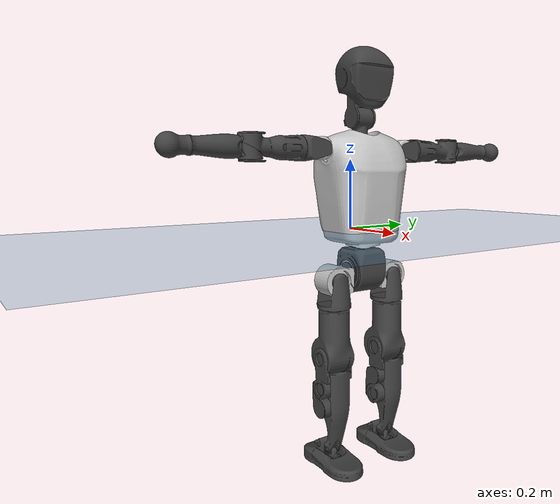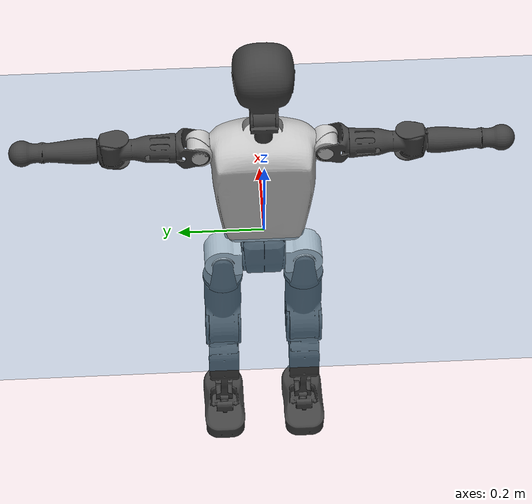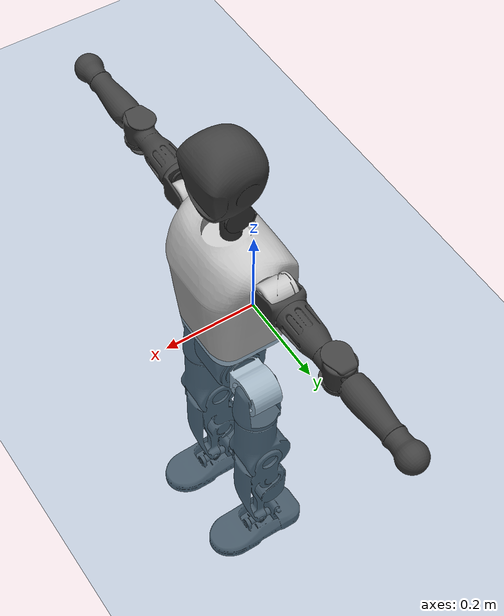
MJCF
<mujoco model="T1">
  <compiler angle="radian" assetdir="assets" balanceinertia="true" inertiafromgeom="false"/>

  <option timestep="0.005" density="1.2" viscosity="2e-05"/>

  <size nkey="1"/>

  <visual>
    <quality shadowsize="8192"/>
    <map shadowclip="0.5"/>
  </visual>

  <default>
    <default class="/">
      <joint armature="0.01" damping="0.01" frictionloss="0.1"/>
      <geom contype="0" conaffinity="0" group="1" solref="-1000 -80"/>
      <site size="0.01 0.005 0.005" group="5"/>
      <general forcelimited="true" biastype="affine" gainprm="25" biasprm="0 -25 -0.6"/>
      <default class="t1">
        <geom rgba="0.25 0.25 0.25 1"/>
        <default class="visual">
          <geom type="mesh" group="2"/>
        </default>
        <default class="collision">
          <geom group="3"/>
        </default>
        <default class="foot">
          <geom size="0.1115 0.05 0.015" type="box" condim="6" group="4" priority="1" solimp="0.015 1 0.015"/>
        </default>
        <default class="reward_collision_sphere">
          <geom group="5" rgba="1 0 0 1"/>
        </default>
      </default>
    </default>
  </default>

  <asset>
    <texture type="skybox" colorspace="auto" name="//unnamed_texture_0" builtin="gradient" rgb1="0.95 0.95 0.95" rgb2="0.95 0.95 0.95" width="100" height="600"/>
    <texture type="2d" colorspace="auto" name="texplane" builtin="checker" rgb1="0.345 0.575 0.748" rgb2="0.345 0.575 0.748" markrgb="1 1 1" width="512" height="512"/>
    <material name="MatPlane" class="/" texture="texplane" texuniform="true" texrepeat="2 2" specular="0.9"/>
    <mesh name="Trunk" class="/" file="Trunk.stl"/>
    <mesh name="H1" class="/" file="H1.stl"/>
    <mesh name="H2" class="/" file="H2.stl"/>
    <mesh name="AL1" class="/" file="AL1.stl"/>
    <mesh name="AL2" class="/" file="AL2.stl"/>
    <mesh name="AL3" class="/" file="AL3.stl"/>
    <mesh name="left_hand_link" class="/" file="left_hand_link.stl"/>
    <mesh name="AR1" class="/" file="AR1.stl"/>
    <mesh name="AR2" class="/" file="AR2.stl"/>
    <mesh name="AR3" class="/" file="AR3.stl"/>
    <mesh name="right_hand_link" class="/" file="right_hand_link.stl"/>
    <mesh name="Waist" class="/" file="Waist.stl"/>
    <mesh name="Hip_Pitch_Left" class="/" file="Hip_Pitch_Left.stl"/>
    <mesh name="Hip_Roll_Left" class="/" file="Hip_Roll_Left.stl"/>
    <mesh name="Hip_Yaw_Left" class="/" file="Hip_Yaw_Left.stl"/>
    <mesh name="Shank_Left" class="/" file="Shank_Left.stl"/>
    <mesh name="Ankle_Cross_Left" class="/" file="Ankle_Cross_Left.stl"/>
    <mesh name="left_foot_link" class="/" file="left_foot_link.stl"/>
    <mesh name="Hip_Pitch_Right" class="/" file="Hip_Pitch_Right.stl"/>
    <mesh name="Hip_Roll_Right" class="/" file="Hip_Roll_Right.stl"/>
    <mesh name="Hip_Yaw_Right" class="/" file="Hip_Yaw_Right.stl"/>
    <mesh name="Shank_Right" class="/" file="Shank_Right.stl"/>
    <mesh name="Ankle_Cross_Right" class="/" file="Ankle_Cross_Right.stl"/>
    <mesh name="right_foot_link" class="/" file="right_foot_link.stl"/>
  </asset>

  <worldbody>
    <geom name="floor" class="/" size="100 100 0.125" type="plane" group="0" material="MatPlane"/>
    <light name="toplight_shadow" class="/" pos="0 0 5" dir="0.0990148 0.0990148 -0.990148" type="directional" ambient="0.04 0.04 0.04" diffuse="0.55 0.55 0.55" specular="0.12 0.12 0.12"/>
    <light name="toplight_fill" class="/" pos="0 0 5" dir="0.0990148 0.0990148 -0.990148" type="directional" castshadow="false" ambient="0.04 0.04 0.04" diffuse="0.3 0.3 0.3" specular="0.08 0.08 0.08"/>
    <body name="trunk" childclass="t1" pos="-0.000659758 0.000123077 0.000190647" quat="1 -0.00013902 -4.61307e-05 -0.000158038">
      <inertial pos="0.0464229 -0.000673156 0.110018" quat="0.999965 0.00202874 -0.00802173 0.00114797" mass="9.48741" diaginertia="0.0409022 0.0481669 0.0677747"/>
      <joint name="//unnamed_joint_0" type="free" armature="0" damping="0" frictionloss="0"/>
      <geom name="//unnamed_geom_1" class="visual" rgba="0.76 0.76 0.76 1" mesh="Trunk"/>
      <geom name="//unnamed_geom_2" class="collision" size="0.0699758 0.0933011 0.139952" pos="0.0510356 0 0.124537" type="box"/>
      <geom name="//unnamed_geom_3" class="reward_collision_sphere" size="0.107296" pos="0.0510356 0 0.103781"/>
      <geom name="//unnamed_geom_4" class="reward_collision_sphere" size="0.0139952" pos="0.0510356 0.0774034 0"/>
      <geom name="//unnamed_geom_5" class="reward_collision_sphere" size="0.0139952" pos="0.0510356 -0.0774034 0"/>
      <geom name="//unnamed_geom_6" class="reward_collision_sphere" size="0.0139952" pos="0.0510356 0.0974372 0.186806"/>
      <geom name="//unnamed_geom_7" class="reward_collision_sphere" size="0.0139952" pos="0.0510356 -0.0974372 0.186806"/>
      <site name="imu" pos="-0.00487688 0.00433971 -0.00182553" size="0.00933011"/>
      <camera name="track" pos="0 -1.82126 0" quat="0.707107 0.707107 0 0" mode="trackcom"/>
      <camera name="ego_camera" pos="0.103772 0 0.435881" quat="-0.5 -0.5 0.5 0.5"/>
      <body name="H1" pos="0.0510076 -0.00144712 0.250431" quat="1 9.29764e-05 7.17653e-05 3.94656e-05">
        <inertial pos="-0.00055495 -0.00109888 0.0605558" quat="0.765667 -0.00961206 0.00438377 0.643151" mass="0.361592" diaginertia="0.000107456 0.000138127 0.000181203"/>
        <joint name="AAHead_yaw" pos="0 0 0" axis="0.00391655 0.00139393 0.999991" range="-1.56575 1.56084" armature="0.00955449" damping="0.0114645" frictionloss="0.0889847"/>
        <geom name="//unnamed_geom_8" class="visual" mesh="H1"/>
        <body name="H2" pos="-0.000350585 3.54191e-06 0.0638653" quat="1 -3.38035e-05 -8.56712e-06 9.32047e-06">
          <inertial pos="0.00577611 -0.000640881 0.102456" quat="0.988545 0.106696 -0.0734587 -0.0774537" mass="0.51414" diaginertia="0.000917492 0.00120704 0.00205619"/>
          <joint name="Head_pitch" pos="0 0 0" axis="-6.42849e-06 -1 1.2689e-05" range="-1.22294 0.347007" armature="0.00905566" damping="0.00574642" frictionloss="0.092614"/>
          <geom name="//unnamed_geom_9" class="visual" mesh="H2"/>
          <geom name="//unnamed_geom_10" class="collision" size="0.0746409" pos="0.00850593 0 0.114159"/>
          <geom name="//unnamed_geom_11" class="reward_collision_sphere" size="0.083971" pos="0.0170119 0 0.103781"/>
        </body>
      </body>
      <body name="AL1" pos="0.0487707 0.098759 0.226466" quat="1 -8.34808e-06 0.000451126 1.5661e-05">
        <inertial pos="-0.00195179 0.0416588 5.31763e-05" quat="0.504248 0.495766 -0.504206 0.495708" mass="0.42049" diaginertia="0.000595397 0.000791577 0.000349584"/>
        <joint name="Left_Shoulder_Pitch" pos="0 0 0" axis="0.00464734 0.999988 -0.00166059" range="-3.32686 1.21881" armature="0.00901661" damping="0.00846924" frictionloss="0.0958302"/>
        <geom name="//unnamed_geom_12" class="visual" rgba="0.76 0.76 0.76 1" mesh="AL1"/>
        <body name="AL2" pos="0.00113452 0.0442008 -0.000733081" quat="1 0.000119906 0.000140261 0.000333201">
          <inertial pos="0.00328908 0.0345022 -0.00125874" quat="0.487818 0.511859 -0.487974 0.511777" mass="0.131556" diaginertia="0.000180245 0.000222304 0.000217027"/>
          <joint name="Left_Shoulder_Roll" pos="0 0 0" axis="-0.999999 -0.000542842 0.000874476" range="-1.58511 1.73092" armature="0.0093466" damping="0.0124531" frictionloss="0.0913409"/>
          <geom name="//unnamed_geom_13" class="visual" mesh="AL2"/>
          <body name="AL3" pos="0.00190965 0.0556694 0.000974924" quat="1 -3.07357e-07 0.000275416 0.00019741">
            <inertial pos="-0.000569636 0.077914 -0.000330101" quat="0.706444 0.707769 -7.05515e-05 -7.16539e-05" mass="0.821742" diaginertia="0.00572831 0.00798838 0.000746511"/>
            <joint name="Left_Elbow_Pitch" pos="0 0 0" axis="0.00196925 -0.999996 0.00215447" stiffness="0.00178394" range="-2.27806 2.27221" armature="0.00921348" damping="0.0126898" frictionloss="0.094576"/>
            <geom name="//unnamed_geom_14" class="visual" mesh="AL3"/>
            <geom name="//unnamed_geom_15" class="collision" size="0.0279903 0.0699758" pos="0 0.0455314 0" quat="0.707105 0.707108 0 0" type="cylinder"/>
            <geom name="//unnamed_geom_16" class="reward_collision_sphere" size="0.0335884"/>
            <body name="left_hand_link" pos="-0.00061458 0.134266 0.00111451" quat="1 -1.44264e-05 6.15365e-05 -2.44035e-05">
              <inertial pos="0.0014139 0.0996558 -0.00011772" quat="0.7102 0.704 0.000245385 -0.000126816" mass="0.266429" diaginertia="0.00362489 0.00506905 0.000255078"/>
              <joint name="Left_Elbow_Yaw" pos="0 0 0" axis="0.00273608 -0.00577917 0.99998" range="-2.46518 0.0191924" armature="0.00923955" damping="0.0088796" frictionloss="0.092918"/>
              <geom name="//unnamed_geom_17" class="visual" mesh="left_hand_link"/>
              <geom name="//unnamed_geom_18" class="collision" size="0.0279903 0.0816385" pos="0 0.118382 0" quat="0.707105 0.707108 0 0" type="cylinder"/>
              <geom name="//unnamed_geom_19" class="reward_collision_sphere" size="0.0466505"/>
              <geom name="//unnamed_geom_20" class="reward_collision_sphere" size="0.0326554" pos="0 0.100169 0"/>
              <geom name="//unnamed_geom_21" class="reward_collision_sphere" size="0.0326554" pos="0 0.195785 0"/>
            </body>
          </body>
        </body>
      </body>
      <body name="AR1" pos="0.0488248 -0.0963736 0.227296" quat="1 0.000290892 0.000642996 -9.39616e-05">
        <inertial pos="-0.00194339 -0.0413768 4.30273e-05" quat="0.504344 0.495447 -0.504391 0.495741" mass="0.429354" diaginertia="0.000613151 0.000807777 0.000353703"/>
        <joint name="Right_Shoulder_Pitch" pos="0 0 0" axis="-0.000442013 -1 0.00056644" range="-1.22812 3.30168" armature="0.00907367" damping="0.00157179" frictionloss="0.0973597"/>
        <geom name="//unnamed_geom_22" class="visual" rgba="0.76 0.76 0.76 1" mesh="AR1"/>
        <body name="AR2" pos="-0.00051776 -0.043291 -0.000592207" quat="1 -7.66022e-05 -1.65228e-05 -8.97123e-05">
          <inertial pos="0.00405098 -0.0347346 -0.000601408" quat="0.511685 0.488614 -0.510846 0.488335" mass="0.12878" diaginertia="0.000177105 0.000211513 0.000208768"/>
          <joint name="Right_Shoulder_Roll" pos="0 0 0" axis="-0.999994 0.00270192 -0.00221607" range="-1.71317 1.56138" armature="0.00893936" damping="0.0128228" frictionloss="0.0945281"/>
          <geom name="//unnamed_geom_23" class="visual" mesh="AR2"/>
          <body name="AR3" pos="-0.000694862 -0.0560529 -0.000804348" quat="1 2.89755e-06 -1.79156e-06 -5.25976e-07">
            <inertial pos="-0.00130737 -0.0783711 0.000275778" quat="0.70774 0.706458 -0.00465492 -0.000204025" mass="0.830198" diaginertia="0.00570835 0.00804204 0.000758619"/>
            <joint name="Right_Elbow_Pitch" pos="0 0 0" axis="0.00121763 0.999986 0.00513322" range="-2.2698 2.28237" armature="0.00922138" damping="0.0100858" frictionloss="0.0890677"/>
            <geom name="//unnamed_geom_24" class="visual" mesh="AR3"/>
            <geom name="//unnamed_geom_25" class="collision" size="0.0279903 0.0699758" pos="0 -0.0455314 0" quat="0.707105 0.707108 0 0" type="cylinder"/>
            <geom name="//unnamed_geom_26" class="reward_collision_sphere" size="0.0335884"/>
            <body name="right_hand_link" pos="-0.00115113 -0.134666 -0.000145707" quat="1 9.84289e-06 1.13827e-05 7.48164e-05">
              <inertial pos="-0.000611998 -0.100142 0.00140549" quat="0.706279 0.707934 0.000208473 3.27641e-05" mass="0.264396" diaginertia="0.00362019 0.00502351 0.000260087"/>
              <joint name="Right_Elbow_Yaw" pos="0 0 0" axis="0.00351372 0.00241815 0.999991" range="-0.0191005 2.44812" armature="0.00943426" damping="0.0132055" frictionloss="0.0901829"/>
              <geom name="//unnamed_geom_27" class="visual" mesh="right_hand_link"/>
              <geom name="//unnamed_geom_28" class="collision" size="0.0279903 0.0816385" pos="0 -0.118382 0" quat="0.707105 0.707108 0 0" type="cylinder"/>
              <geom name="//unnamed_geom_29" class="reward_collision_sphere" size="0.0466505"/>
              <geom name="//unnamed_geom_30" class="reward_collision_sphere" size="0.0326554" pos="0 -0.100169 0"/>
              <geom name="//unnamed_geom_31" class="reward_collision_sphere" size="0.0326554" pos="0 -0.195785 0"/>
            </body>
          </body>
        </body>
      </body>
      <body name="Waist" pos="0.053761 -0.000467963 -0.119927" quat="1 7.86204e-05 3.78454e-05 2.80991e-07">
        <inertial pos="0.00163496 -0.000568144 0.0078758" quat="0.984433 0.00050209 -0.175752 0.00184769" mass="2.11414" diaginertia="0.00243981 0.0033368 0.00583173"/>
        <joint name="Waist" pos="0 0 0" axis="0.000159872 -0.000518783 1" range="-1.55527 1.58822" armature="0.00941259" damping="0.0134546" frictionloss="0.0903455"/>
        <geom name="//unnamed_geom_32" class="visual" mesh="Waist"/>
        <body name="Hip_Pitch_Left" pos="-0.000693501 0.0967493 0.00050939" quat="1 1.39657e-05 -1.51455e-05 -4.09127e-05">
          <inertial pos="0.00027815 -0.00696698 -0.0194153" quat="0.976034 0.216969 0.0166362 0.00232849" mass="0.829269" diaginertia="0.0008125 0.000913373 0.00152449"/>
          <joint name="Left_Hip_Pitch" pos="0 0 0" axis="0.00189225 0.999996 0.00217468" range="-1.78958 1.57373" armature="0.00910479" damping="0.0114504" frictionloss="0.0933218"/>
          <geom name="//unnamed_geom_33" class="visual" rgba="0.76 0.76 0.76 1" mesh="Hip_Pitch_Left"/>
          <body name="Hip_Roll_Left" pos="0.00105709 0.000728417 -0.0205387" quat="1 -1.23038e-05 0.000123897 0.000600126">
            <inertial pos="0.000333371 -0.000195153 -0.0556904" quat="0.70648 -0.00637404 -0.00478937 0.707688" mass="0.308083" diaginertia="0.000751249 0.000934154 0.000614186"/>
            <joint name="Left_Hip_Roll" pos="0 0 0" axis="-0.999991 -0.000385158 0.00424971" range="-1.54874 0.192939" armature="0.00971305" damping="0.0110693" frictionloss="0.0970704"/>
            <geom name="//unnamed_geom_34" class="visual" mesh="Hip_Roll_Left"/>
            <geom name="//unnamed_geom_35" class="reward_collision_sphere" size="0.0513156"/>
            <body name="Hip_Yaw_Left" pos="-9.31105e-06 0.000827773 -0.0863226" quat="1 -0.000177749 -0.000211438 -0.000185994">
              <inertial pos="-0.00671102 -2.74753e-05 -0.0922436" quat="0.696819 -0.0339566 -0.0315751 0.715747" mass="1.75573" diaginertia="0.0115243 0.0156867 0.00310223"/>
              <joint name="Left_Hip_Yaw" pos="0 0 0" axis="0.000180341 -0.000727205 -1" range="-0.981647 1.0153" armature="0.00932288" damping="0.00929316" frictionloss="0.0936895"/>
              <geom name="//unnamed_geom_36" class="visual" mesh="Hip_Yaw_Left"/>
              <geom name="//unnamed_geom_37" class="collision" size="0.0466505 0.0746409" type="cylinder"/>
              <body name="Shank_Left" pos="-0.0108001 0.000262574 -0.138571" quat="1 -1.80887e-05 5.68477e-05 4.83765e-05">
                <inertial pos="-0.00625384 0.000167152 -0.129474" quat="0.997838 -0.00302235 -0.0206174 0.062323" mass="1.41391" diaginertia="0.0153741 0.0219543 0.00221203"/>
                <joint name="Left_Knee_Pitch" pos="0 0 0" axis="-0.00196106 0.999995 -0.00244589" stiffness="0.00204484" range="-0.00416321 2.33448" armature="0.00954117" damping="0.0106115" frictionloss="0.0981227"/>
                <geom name="//unnamed_geom_38" class="visual" mesh="Shank_Left"/>
                <geom name="//unnamed_geom_39" class="collision" size="0.0466505 0.0699758" pos="0 0 -0.124537" type="cylinder"/>
                <geom name="//unnamed_geom_40" class="reward_collision_sphere" size="0.0606457"/>
                <body name="Ankle_Cross_Left" pos="-0.00013301 0.000319736 -0.291294" quat="1 3.18678e-05 4.64567e-05 -2.63194e-05">
                  <inertial pos="-0.00277466 0.000338151 -0.00865438" quat="0.442401 0.55246 0.551061 0.442041" mass="0.0585867" diaginertia="1.26146e-05 1.58665e-05 1.35511e-05"/>
                  <joint name="Left_Ankle_Pitch" pos="0 0 0" axis="0.00247087 0.999997 -0.000306952" range="-0.867787 0.360403" armature="0.00988766" damping="0.0121872" frictionloss="0.0976131"/>
                  <geom name="//unnamed_geom_41" class="visual" mesh="Ankle_Cross_Left"/>
                  <body name="left_foot_link" pos="0.000720259 0.000501477 -0.0116089" quat="1 6.65724e-07 -7.00788e-05 -4.1787e-05">
                    <inertial pos="-0.00113816 -0.000348309 -0.00949513" quat="0.00191466 0.619403 7.81e-06 0.785071" mass="0.556281" diaginertia="0.00121171 0.00150146 0.00263666"/>
                    <joint name="Left_Ankle_Roll" pos="0 0 0" axis="-1 -0.000440032 -9.07211e-05" stiffness="0.000266595" range="-0.460459 0.45875" armature="0.009309" damping="0.00213637" frictionloss="0.0908805"/>
                    <geom name="//unnamed_geom_42" class="visual" mesh="left_foot_link"/>
                    <geom name="left_foot" class="foot" size="0.102302 0.0456771 0.0147286" pos="0.00850593 0 -0.0155672"/>
                    <geom name="//unnamed_geom_44" class="reward_collision_sphere" size="0.0485166" pos="0.00850593 0 -0.0155672"/>
                    <geom name="//unnamed_geom_45" class="reward_collision_sphere" size="0.0279903" pos="0.0808063 -0.0209444 -0.0155672"/>
                    <geom name="//unnamed_geom_46" class="reward_collision_sphere" size="0.0279903" pos="-0.0595415 -0.0209444 -0.0155672"/>
                    <site name="left_foot" class="foot" pos="0.00850593 0 -0.0155672" size="0.00933011"/>
                  </body>
                </body>
              </body>
            </body>
          </body>
        </body>
        <body name="Hip_Pitch_Right" pos="0.000207845 -0.0970119 0.000857024" quat="1 -0.000265257 -0.000235521 0.000187231">
          <inertial pos="-0.000107723 0.00691628 -0.0188192" quat="0.973352 -0.228859 0.0135912 -0.00503523" mass="0.8337" diaginertia="0.000792474 0.00092484 0.00148586"/>
          <joint name="Right_Hip_Pitch" pos="0 0 0" axis="-0.00518797 -0.999987 0.000222157" range="-1.60356 1.82119" armature="0.00928759" damping="0.00885588" frictionloss="0.0892154"/>
          <geom name="//unnamed_geom_47" class="visual" rgba="0.76 0.76 0.76 1" mesh="Hip_Pitch_Right"/>
          <body name="Hip_Roll_Right" pos="0.00131135 -6.80894e-05 -0.0209481" quat="1 0.000129544 2.91746e-06 6.43155e-05">
            <inertial pos="0.00143382 -1.47448e-05 -0.0557109" quat="0.706481 -0.00516625 -0.00490373 0.707696" mass="0.312511" diaginertia="0.000776217 0.00096017 0.000625356"/>
            <joint name="Right_Hip_Roll" pos="0 0 0" axis="-0.999956 0.0032971 -0.00876461" stiffness="0.00420761" range="-0.198253 1.57057" armature="0.009703" damping="0.00896016" frictionloss="0.094929"/>
            <geom name="//unnamed_geom_48" class="visual" mesh="Hip_Roll_Right"/>
            <geom name="//unnamed_geom_49" class="reward_collision_sphere" size="0.0513156"/>
            <body name="Hip_Yaw_Right" pos="-9.08232e-05 -0.000854037 -0.0855084" quat="1 3.79197e-05 -0.000130599 4.15372e-05">
              <inertial pos="-0.00669338 0.000348404 -0.0918966" quat="0.71614 -0.0250009 -0.0360525 0.696576" mass="1.76138" diaginertia="0.0114627 0.016046 0.0031365"/>
              <joint name="Right_Hip_Yaw" pos="0 0 0" axis="-0.00252609 -0.00309658 -0.999992" range="-0.99416 1.00377" armature="0.00911509" damping="0.0103436" frictionloss="0.0929581"/>
              <geom name="//unnamed_geom_50" class="visual" mesh="Hip_Yaw_Right"/>
              <geom name="//unnamed_geom_51" class="collision" size="0.0466505 0.0746409" type="cylinder"/>
              <body name="Shank_Right" pos="-0.0125966 -0.00169796 -0.139677" quat="1 1.27396e-05 -4.48268e-07 1.64708e-05">
                <inertial pos="-0.00653794 0.00149823 -0.126291" quat="0.999261 -0.000582717 -0.0234465 -0.0304539" mass="1.46449" diaginertia="0.0157223 0.0221318 0.00240922"/>
                <joint name="Right_Knee_Pitch" pos="0 0 0" axis="-0.00136466 -0.999998 0.00108437" range="-2.32248 -0.00724059" armature="0.00928731" damping="0.00561045" frictionloss="0.0976247"/>
                <geom name="//unnamed_geom_52" class="visual" mesh="Shank_Right"/>
                <geom name="//unnamed_geom_53" class="collision" size="0.0466505 0.0699758" pos="0 0 -0.124537" type="cylinder"/>
                <geom name="//unnamed_geom_54" class="reward_collision_sphere" size="0.0606457"/>
                <body name="Ankle_Cross_Right" pos="8.9227e-05 -9.69801e-05 -0.291436" quat="1 7.87193e-05 1.84976e-05 8.82017e-05">
                  <inertial pos="-0.00291788 0.000237149 -0.0084413" quat="0.438899 0.551516 0.551675 0.445929" mass="0.0597201" diaginertia="1.29715e-05 1.57006e-05 1.36177e-05"/>
                  <joint name="Right_Ankle_Pitch" pos="0 0 0" axis="0.00220688 -0.999998 0.000113045" range="-0.370279 0.869501" armature="0.00906878" damping="0.00162899" frictionloss="0.094798"/>
                  <geom name="//unnamed_geom_55" class="visual" mesh="Ankle_Cross_Right"/>
                  <body name="right_foot_link" pos="-0.00113603 -0.000715155 -0.0118137" quat="1 1.05188e-05 -7.00587e-06 -3.71311e-06">
                    <inertial pos="-0.000120026 -0.000643026 -0.00892913" quat="-0.00371055 0.619378 -7.46694e-05 0.785084" mass="0.553929" diaginertia="0.00120507 0.00148254 0.00263823"/>
                    <joint name="Right_Ankle_Roll" pos="0 0 0" axis="-1 -0.000255917 0.000731738" range="-0.432203 0.453489" armature="0.00906631" damping="0.0044635" frictionloss="0.0962469"/>
                    <geom name="//unnamed_geom_56" class="visual" mesh="right_foot_link"/>
                    <geom name="right_foot" class="foot" size="0.0966765 0.0436086 0.0137111" pos="0.00850593 0 -0.0155672"/>
                    <geom name="//unnamed_geom_58" class="reward_collision_sphere" size="0.0373204"/>
                    <geom name="//unnamed_geom_59" class="reward_collision_sphere" size="0.0279903" pos="0.00850593 0 -0.0155672"/>
                    <geom name="//unnamed_geom_60" class="reward_collision_sphere" size="0.0279903" pos="0.0808063 0.0209444 -0.0155672"/>
                    <geom name="//unnamed_geom_61" class="reward_collision_sphere" size="0.0279903" pos="-0.0595415 0.0209444 -0.0155672"/>
                    <site name="right_foot" class="foot" pos="0.00850593 0 -0.0155672" size="0.00933011"/>
                  </body>
                </body>
              </body>
            </body>
          </body>
        </body>
      </body>
    </body>
  </worldbody>

  <contact>
    <pair class="/" geom1="floor" geom2="left_foot" name="//unnamed_contact_0"/>
    <pair class="/" geom1="floor" geom2="right_foot" name="//unnamed_contact_1"/>
  </contact>

  <actuator>
    <general name="AAHead_yaw" class="/" joint="AAHead_yaw" forcerange="-6.41127 6.41127" gainprm="22.4226" biasprm="0 -22.4226 -0.548656"/>
    <general name="Head_pitch" class="/" joint="Head_pitch" forcerange="-6.61575 6.61575" gainprm="22.4226" biasprm="0 -22.4226 -0.548656"/>
    <general name="Left_Shoulder_Pitch" class="/" joint="Left_Shoulder_Pitch" forcerange="-16.8261 16.8261" gainprm="22.4226" biasprm="0 -22.4226 -0.548656"/>
    <general name="Left_Shoulder_Roll" class="/" joint="Left_Shoulder_Roll" forcerange="-16.8568 16.8568" gainprm="22.4226" biasprm="0 -22.4226 -0.548656"/>
    <general name="Left_Elbow_Pitch" class="/" joint="Left_Elbow_Pitch" forcerange="-16.6585 16.6585" gainprm="22.4226" biasprm="0 -22.4226 -0.548656"/>
    <general name="Left_Elbow_Yaw" class="/" joint="Left_Elbow_Yaw" forcerange="-16.3557 16.3557" gainprm="22.4226" biasprm="0 -22.4226 -0.548656"/>
    <general name="Right_Shoulder_Pitch" class="/" joint="Right_Shoulder_Pitch" forcerange="-17.4481 17.4481" gainprm="22.4226" biasprm="0 -22.4226 -0.548656"/>
    <general name="Right_Shoulder_Roll" class="/" joint="Right_Shoulder_Roll" forcerange="-16.7708 16.7708" gainprm="22.4226" biasprm="0 -22.4226 -0.548656"/>
    <general name="Right_Elbow_Pitch" class="/" joint="Right_Elbow_Pitch" forcerange="-16.7258 16.7258" gainprm="22.4226" biasprm="0 -22.4226 -0.548656"/>
    <general name="Right_Elbow_Yaw" class="/" joint="Right_Elbow_Yaw" forcerange="-16.7726 16.7726" gainprm="22.4226" biasprm="0 -22.4226 -0.548656"/>
    <general name="Waist" class="/" joint="Waist" forcerange="-27.5918 27.5918" gainprm="22.4226" biasprm="0 -22.4226 -0.548656"/>
    <general name="Left_Hip_Pitch" class="/" joint="Left_Hip_Pitch" forcerange="-41.7163 41.7163" gainprm="22.4226" biasprm="0 -22.4226 -0.548656"/>
    <general name="Left_Hip_Roll" class="/" joint="Left_Hip_Roll" forcerange="-28.4659 28.4659" gainprm="22.4226" biasprm="0 -22.4226 -0.548656"/>
    <general name="Left_Hip_Yaw" class="/" joint="Left_Hip_Yaw" forcerange="-28.347 28.347" gainprm="22.4226" biasprm="0 -22.4226 -0.548656"/>
    <general name="Left_Knee_Pitch" class="/" joint="Left_Knee_Pitch" forcerange="-53.7405 53.7405" gainprm="22.4226" biasprm="0 -22.4226 -0.548656"/>
    <general name="Left_Ankle_Pitch" class="/" joint="Left_Ankle_Pitch" forcerange="-19.3077 19.3077" gainprm="22.4226" biasprm="0 -22.4226 -0.548656"/>
    <general name="Left_Ankle_Roll" class="/" joint="Left_Ankle_Roll" forcerange="-14.1404 14.1404" gainprm="22.4226" biasprm="0 -22.4226 -0.548656"/>
    <general name="Right_Hip_Pitch" class="/" joint="Right_Hip_Pitch" forcerange="-41.8821 41.8821" gainprm="22.4226" biasprm="0 -22.4226 -0.548656"/>
    <general name="Right_Hip_Roll" class="/" joint="Right_Hip_Roll" forcerange="-27.437 27.437" gainprm="22.4226" biasprm="0 -22.4226 -0.548656"/>
    <general name="Right_Hip_Yaw" class="/" joint="Right_Hip_Yaw" forcerange="-28.5835 28.5835" gainprm="22.4226" biasprm="0 -22.4226 -0.548656"/>
    <general name="Right_Knee_Pitch" class="/" joint="Right_Knee_Pitch" forcerange="-56.171 56.171" gainprm="22.4226" biasprm="0 -22.4226 -0.548656"/>
    <general name="Right_Ankle_Pitch" class="/" joint="Right_Ankle_Pitch" forcerange="-18.3628 18.3628" gainprm="22.4226" biasprm="0 -22.4226 -0.548656"/>
    <general name="Right_Ankle_Roll" class="/" joint="Right_Ankle_Roll" forcerange="-13.7424 13.7424" gainprm="22.4226" biasprm="0 -22.4226 -0.548656"/>
  </actuator>

  <sensor>
    <gyro site="imu" name="imu_angular_velocity"/>
    <velocimeter site="imu" name="imu_linear_velocity"/>
    <framelinvel objtype="site" objname="left_foot" name="left_foot_global_linear_velocity"/>
    <framelinvel objtype="site" objname="right_foot" name="right_foot_global_linear_velocity"/>
  </sensor>

  <keyframe>
    <key name="home" qpos="0 0 0.6385 1 0 0 0 0 0 0 1.4 0 -0.4 0 -1.4 0 0.4 0 -0.4 0 0 0.8 -0.4 0 0.4 0 0 -0.8 0.4 0"/>
  </keyframe>
</mujoco>
